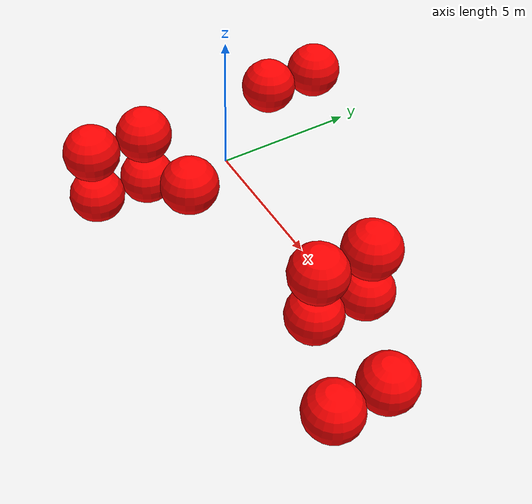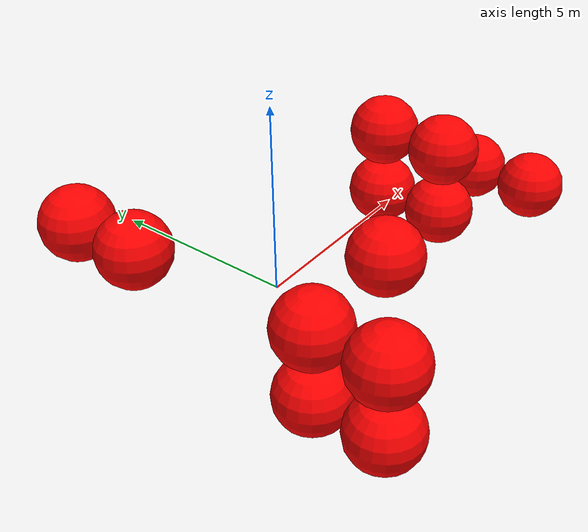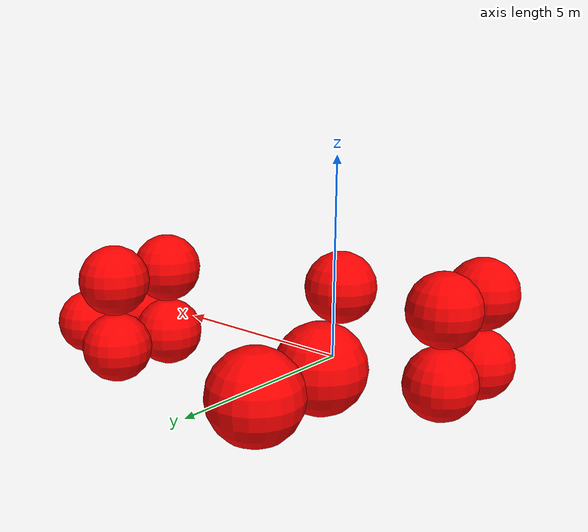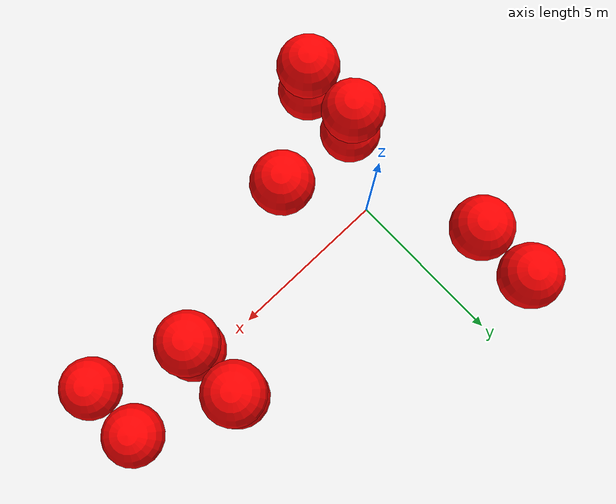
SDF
<sdf version="1.8">
 <world name="3d_world">
  <model name="obstacle_1" canonical_link="obstacle">
   <static>true</static>
   <pose relative_to="world">6.81 -0.61 -1.00 0 0 0</pose>
   <link name="obstacle">
    <pose relative_to="__model__">0.0 0 0.0 0 0 0</pose>
    <visual name="visual">
     <geometry><sphere><radius>1.00</radius></sphere></geometry>
     <material>
      <ambient>1.0 0.0 0.0 1</ambient>
      <diffuse>1.0 0.0 0.0 1</diffuse>
      <specular>1.0 0.0 0.0 1</specular>
     </material>
    </visual>
    <collision name="collision"><geometry><sphere><radius>1.00</radius></sphere></geometry></collision>
    <enable_gravity>false</enable_gravity>
   </link>
   <plugin filename="ignition-gazebo-velocity-control-system" name="ignition::gazebo::systems::VelocityControl">
    <initial_linear>0.00 0.00 0.00</initial_linear>
    <initial_angular>0 0 0</initial_angular>
   </plugin>
   <plugin filename="ignition-gazebo-odometry-publisher-system" name="ignition::gazebo::systems::OdometryPublisher">
    <dimensions>3</dimensions>
   </plugin>
  </model>
  <model name="obstacle_2" canonical_link="obstacle">
   <static>true</static>
   <pose relative_to="world">6.81 1.39 -1.00 0 0 0</pose>
   <link name="obstacle">
    <pose relative_to="__model__">0.0 0 0.0 0 0 0</pose>
    <visual name="visual">
     <geometry><sphere><radius>1.00</radius></sphere></geometry>
     <material>
      <ambient>1.0 0.0 0.0 1</ambient>
      <diffuse>1.0 0.0 0.0 1</diffuse>
      <specular>1.0 0.0 0.0 1</specular>
     </material>
    </visual>
    <collision name="collision"><geometry><sphere><radius>1.00</radius></sphere></geometry></collision>
    <enable_gravity>false</enable_gravity>
   </link>
   <plugin filename="ignition-gazebo-velocity-control-system" name="ignition::gazebo::systems::VelocityControl">
    <initial_linear>0.00 0.00 0.00</initial_linear>
    <initial_angular>0 0 0</initial_angular>
   </plugin>
   <plugin filename="ignition-gazebo-odometry-publisher-system" name="ignition::gazebo::systems::OdometryPublisher">
    <dimensions>3</dimensions>
   </plugin>
  </model>
  <model name="obstacle_3" canonical_link="obstacle">
   <static>true</static>
   <pose relative_to="world">6.81 -0.61 1.00 0 0 0</pose>
   <link name="obstacle">
    <pose relative_to="__model__">0.0 0 0.0 0 0 0</pose>
    <visual name="visual">
     <geometry><sphere><radius>1.00</radius></sphere></geometry>
     <material>
      <ambient>1.0 0.0 0.0 1</ambient>
      <diffuse>1.0 0.0 0.0 1</diffuse>
      <specular>1.0 0.0 0.0 1</specular>
     </material>
    </visual>
    <collision name="collision"><geometry><sphere><radius>1.00</radius></sphere></geometry></collision>
    <enable_gravity>false</enable_gravity>
   </link>
   <plugin filename="ignition-gazebo-velocity-control-system" name="ignition::gazebo::systems::VelocityControl">
    <initial_linear>0.00 0.00 0.00</initial_linear>
    <initial_angular>0 0 0</initial_angular>
   </plugin>
   <plugin filename="ignition-gazebo-odometry-publisher-system" name="ignition::gazebo::systems::OdometryPublisher">
    <dimensions>3</dimensions>
   </plugin>
  </model>
  <model name="obstacle_4" canonical_link="obstacle">
   <static>true</static>
   <pose relative_to="world">6.81 1.39 1.00 0 0 0</pose>
   <link name="obstacle">
    <pose relative_to="__model__">0.0 0 0.0 0 0 0</pose>
    <visual name="visual">
     <geometry><sphere><radius>1.00</radius></sphere></geometry>
     <material>
      <ambient>1.0 0.0 0.0 1</ambient>
      <diffuse>1.0 0.0 0.0 1</diffuse>
      <specular>1.0 0.0 0.0 1</specular>
     </material>
    </visual>
    <collision name="collision"><geometry><sphere><radius>1.00</radius></sphere></geometry></collision>
    <enable_gravity>false</enable_gravity>
   </link>
   <plugin filename="ignition-gazebo-velocity-control-system" name="ignition::gazebo::systems::VelocityControl">
    <initial_linear>0.00 0.00 0.00</initial_linear>
    <initial_angular>0 0 0</initial_angular>
   </plugin>
   <plugin filename="ignition-gazebo-odometry-publisher-system" name="ignition::gazebo::systems::OdometryPublisher">
    <dimensions>3</dimensions>
   </plugin>
  </model>
  <model name="obstacle_13" canonical_link="obstacle">
   <static>true</static>
   <pose relative_to="world">-1.68 -4.39 -1.00 0 0 0</pose>
   <link name="obstacle">
    <pose relative_to="__model__">0.0 0 0.0 0 0 0</pose>
    <visual name="visual">
     <geometry><sphere><radius>1.00</radius></sphere></geometry>
     <material>
      <ambient>1.0 0.0 0.0 1</ambient>
      <diffuse>1.0 0.0 0.0 1</diffuse>
      <specular>1.0 0.0 0.0 1</specular>
     </material>
    </visual>
    <collision name="collision"><geometry><sphere><radius>1.00</radius></sphere></geometry></collision>
    <enable_gravity>false</enable_gravity>
   </link>
   <plugin filename="ignition-gazebo-velocity-control-system" name="ignition::gazebo::systems::VelocityControl">
    <initial_linear>0.00 0.00 0.00</initial_linear>
    <initial_angular>0 0 0</initial_angular>
   </plugin>
   <plugin filename="ignition-gazebo-odometry-publisher-system" name="ignition::gazebo::systems::OdometryPublisher">
    <dimensions>3</dimensions>
   </plugin>
  </model>
  <model name="obstacle_14" canonical_link="obstacle">
   <static>true</static>
   <pose relative_to="world">-1.68 -2.39 -1.00 0 0 0</pose>
   <link name="obstacle">
    <pose relative_to="__model__">0.0 0 0.0 0 0 0</pose>
    <visual name="visual">
     <geometry><sphere><radius>1.00</radius></sphere></geometry>
     <material>
      <ambient>1.0 0.0 0.0 1</ambient>
      <diffuse>1.0 0.0 0.0 1</diffuse>
      <specular>1.0 0.0 0.0 1</specular>
     </material>
    </visual>
    <collision name="collision"><geometry><sphere><radius>1.00</radius></sphere></geometry></collision>
    <enable_gravity>false</enable_gravity>
   </link>
   <plugin filename="ignition-gazebo-velocity-control-system" name="ignition::gazebo::systems::VelocityControl">
    <initial_linear>0.00 0.00 0.00</initial_linear>
    <initial_angular>0 0 0</initial_angular>
   </plugin>
   <plugin filename="ignition-gazebo-odometry-publisher-system" name="ignition::gazebo::systems::OdometryPublisher">
    <dimensions>3</dimensions>
   </plugin>
  </model>
  <model name="obstacle_15" canonical_link="obstacle">
   <static>true</static>
   <pose relative_to="world">-1.68 -4.39 1.00 0 0 0</pose>
   <link name="obstacle">
    <pose relative_to="__model__">0.0 0 0.0 0 0 0</pose>
    <visual name="visual">
     <geometry><sphere><radius>1.00</radius></sphere></geometry>
     <material>
      <ambient>1.0 0.0 0.0 1</ambient>
      <diffuse>1.0 0.0 0.0 1</diffuse>
      <specular>1.0 0.0 0.0 1</specular>
     </material>
    </visual>
    <collision name="collision"><geometry><sphere><radius>1.00</radius></sphere></geometry></collision>
    <enable_gravity>false</enable_gravity>
   </link>
   <plugin filename="ignition-gazebo-velocity-control-system" name="ignition::gazebo::systems::VelocityControl">
    <initial_linear>0.00 0.00 0.00</initial_linear>
    <initial_angular>0 0 0</initial_angular>
   </plugin>
   <plugin filename="ignition-gazebo-odometry-publisher-system" name="ignition::gazebo::systems::OdometryPublisher">
    <dimensions>3</dimensions>
   </plugin>
  </model>
  <model name="obstacle_16" canonical_link="obstacle">
   <static>true</static>
   <pose relative_to="world">-1.68 -2.39 1.00 0 0 0</pose>
   <link name="obstacle">
    <pose relative_to="__model__">0.0 0 0.0 0 0 0</pose>
    <visual name="visual">
     <geometry><sphere><radius>1.00</radius></sphere></geometry>
     <material>
      <ambient>1.0 0.0 0.0 1</ambient>
      <diffuse>1.0 0.0 0.0 1</diffuse>
      <specular>1.0 0.0 0.0 1</specular>
     </material>
    </visual>
    <collision name="collision"><geometry><sphere><radius>1.00</radius></sphere></geometry></collision>
    <enable_gravity>false</enable_gravity>
   </link>
   <plugin filename="ignition-gazebo-velocity-control-system" name="ignition::gazebo::systems::VelocityControl">
    <initial_linear>0.00 0.00 0.00</initial_linear>
    <initial_angular>0 0 0</initial_angular>
   </plugin>
   <plugin filename="ignition-gazebo-odometry-publisher-system" name="ignition::gazebo::systems::OdometryPublisher">
    <dimensions>3</dimensions>
   </plugin>
  </model>
  <model name="obstacle_21" canonical_link="obstacle">
   <static>true</static>
   <pose relative_to="world">-1.90 2.91 1.00 0 0 0</pose>
   <link name="obstacle">
    <pose relative_to="__model__">0.0 0 0.0 0 0 0</pose>
    <visual name="visual">
     <geometry><sphere><radius>1.00</radius></sphere></geometry>
     <material>
      <ambient>1.0 0.0 0.0 1</ambient>
      <diffuse>1.0 0.0 0.0 1</diffuse>
      <specular>1.0 0.0 0.0 1</specular>
     </material>
    </visual>
    <collision name="collision"><geometry><sphere><radius>1.00</radius></sphere></geometry></collision>
    <enable_gravity>false</enable_gravity>
   </link>
   <plugin filename="ignition-gazebo-velocity-control-system" name="ignition::gazebo::systems::VelocityControl">
    <initial_linear>0.00 0.00 0.00</initial_linear>
    <initial_angular>0 0 0</initial_angular>
   </plugin>
   <plugin filename="ignition-gazebo-odometry-publisher-system" name="ignition::gazebo::systems::OdometryPublisher">
    <dimensions>3</dimensions>
   </plugin>
  </model>
  <model name="obstacle_22" canonical_link="obstacle">
   <static>true</static>
   <pose relative_to="world">-1.90 4.91 1.00 0 0 0</pose>
   <link name="obstacle">
    <pose relative_to="__model__">0.0 0 0.0 0 0 0</pose>
    <visual name="visual">
     <geometry><sphere><radius>1.00</radius></sphere></geometry>
     <material>
      <ambient>1.0 0.0 0.0 1</ambient>
      <diffuse>1.0 0.0 0.0 1</diffuse>
      <specular>1.0 0.0 0.0 1</specular>
     </material>
    </visual>
    <collision name="collision"><geometry><sphere><radius>1.00</radius></sphere></geometry></collision>
    <enable_gravity>false</enable_gravity>
   </link>
   <plugin filename="ignition-gazebo-velocity-control-system" name="ignition::gazebo::systems::VelocityControl">
    <initial_linear>0.00 0.00 0.00</initial_linear>
    <initial_angular>0 0 0</initial_angular>
   </plugin>
   <plugin filename="ignition-gazebo-odometry-publisher-system" name="ignition::gazebo::systems::OdometryPublisher">
    <dimensions>3</dimensions>
   </plugin>
  </model>
  <model name="obstacle_23" canonical_link="obstacle">
   <static>false</static>
   <pose relative_to="world">1.48 -2.22 1.05 0 0 0</pose>
   <link name="obstacle">
    <pose relative_to="__model__">0.0 0 0.0 0 0 0</pose>
    <visual name="visual">
     <geometry><sphere><radius>1.00</radius></sphere></geometry>
     <material>
      <ambient>1.0 0.0 0.0 1</ambient>
      <diffuse>1.0 0.0 0.0 1</diffuse>
      <specular>1.0 0.0 0.0 1</specular>
     </material>
    </visual>
    <collision name="collision"><geometry><sphere><radius>1.00</radius></sphere></geometry></collision>
    <enable_gravity>false</enable_gravity>
   </link>
   <plugin filename="ignition-gazebo-velocity-control-system" name="ignition::gazebo::systems::VelocityControl">
    <initial_linear>0.00 1.03 -0.39</initial_linear>
    <initial_angular>0 0 0</initial_angular>
   </plugin>
   <plugin filename="ignition-gazebo-odometry-publisher-system" name="ignition::gazebo::systems::OdometryPublisher">
    <dimensions>3</dimensions>
   </plugin>
  </model>
  <model name="obstacle_24" canonical_link="obstacle">
   <static>false</static>
   <pose relative_to="world">9.98 -2.00 -1.23 0 0 0</pose>
   <link name="obstacle">
    <pose relative_to="__model__">0.0 0 0.0 0 0 0</pose>
    <visual name="visual">
     <geometry><sphere><radius>1.00</radius></sphere></geometry>
     <material>
      <ambient>1.0 0.0 0.0 1</ambient>
      <diffuse>1.0 0.0 0.0 1</diffuse>
      <specular>1.0 0.0 0.0 1</specular>
     </material>
    </visual>
    <collision name="collision"><geometry><sphere><radius>1.00</radius></sphere></geometry></collision>
    <enable_gravity>false</enable_gravity>
   </link>
   <plugin filename="ignition-gazebo-velocity-control-system" name="ignition::gazebo::systems::VelocityControl">
    <initial_linear>0.00 0.96 1.18</initial_linear>
    <initial_angular>0 0 0</initial_angular>
   </plugin>
   <plugin filename="ignition-gazebo-odometry-publisher-system" name="ignition::gazebo::systems::OdometryPublisher">
    <dimensions>3</dimensions>
   </plugin>
  </model>
  <model name="obstacle_25" canonical_link="obstacle">
   <static>false</static>
   <pose relative_to="world">9.98 0.00 -1.23 0 0 0</pose>
   <link name="obstacle">
    <pose relative_to="__model__">0.0 0 0.0 0 0 0</pose>
    <visual name="visual">
     <geometry><sphere><radius>1.00</radius></sphere></geometry>
     <material>
      <ambient>1.0 0.0 0.0 1</ambient>
      <diffuse>1.0 0.0 0.0 1</diffuse>
      <specular>1.0 0.0 0.0 1</specular>
     </material>
    </visual>
    <collision name="collision"><geometry><sphere><radius>1.00</radius></sphere></geometry></collision>
    <enable_gravity>false</enable_gravity>
   </link>
   <plugin filename="ignition-gazebo-velocity-control-system" name="ignition::gazebo::systems::VelocityControl">
    <initial_linear>0.00 0.96 1.18</initial_linear>
    <initial_angular>0 0 0</initial_angular>
   </plugin>
   <plugin filename="ignition-gazebo-odometry-publisher-system" name="ignition::gazebo::systems::OdometryPublisher">
    <dimensions>3</dimensions>
   </plugin>
  </model>
 </world>
</sdf>
